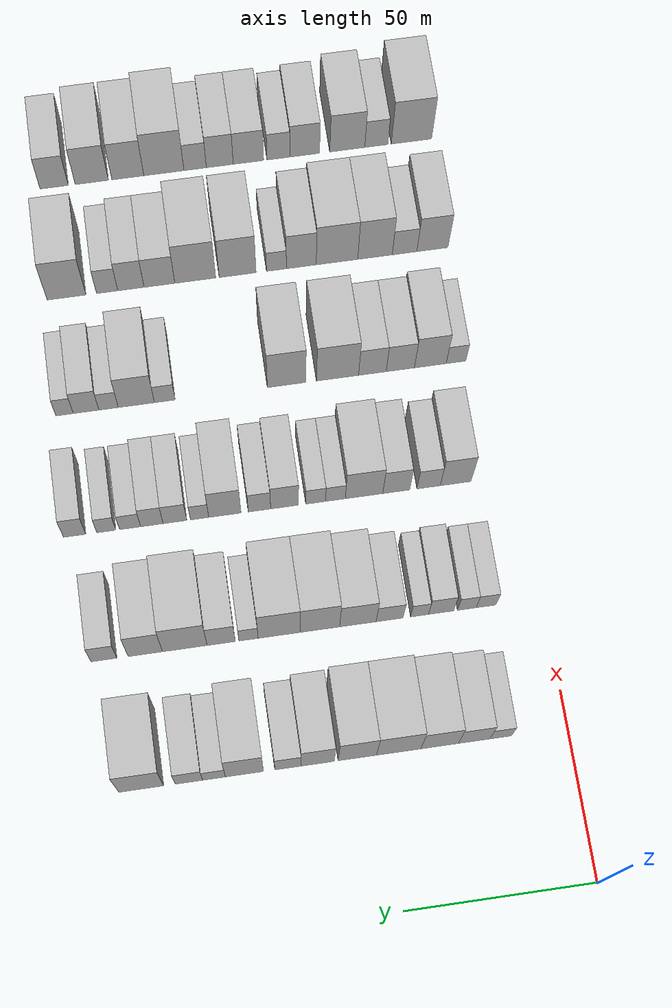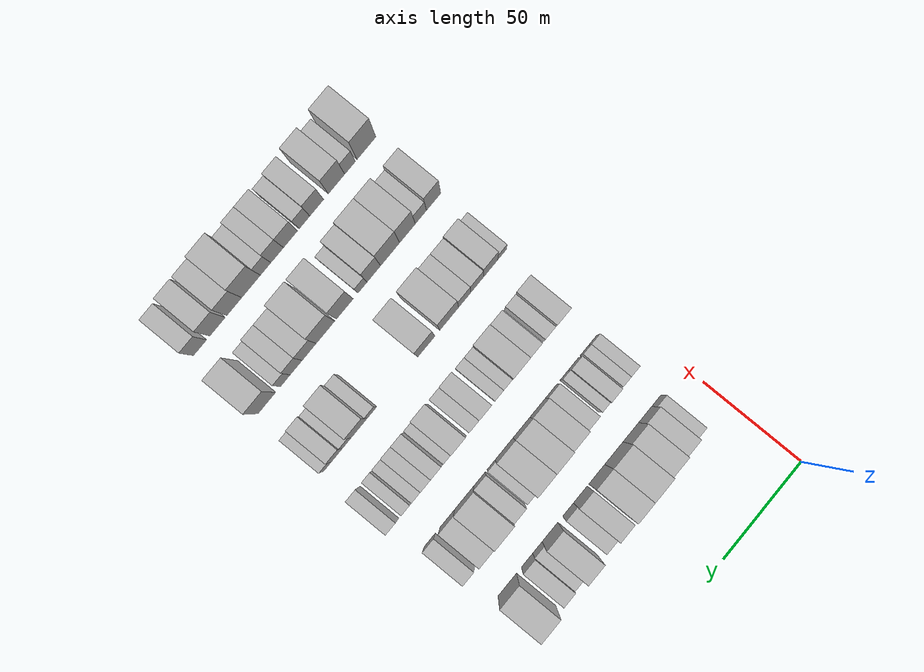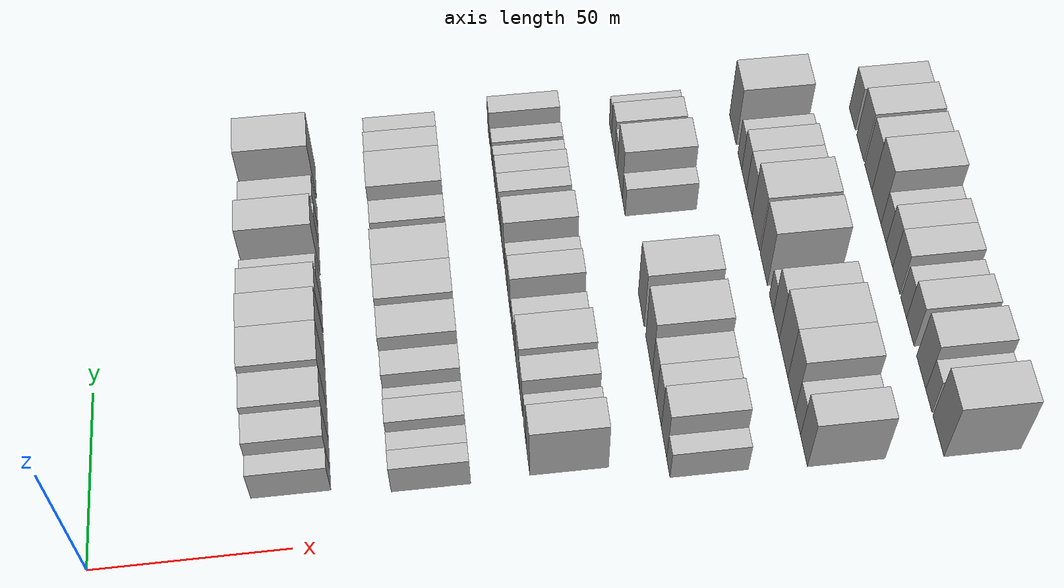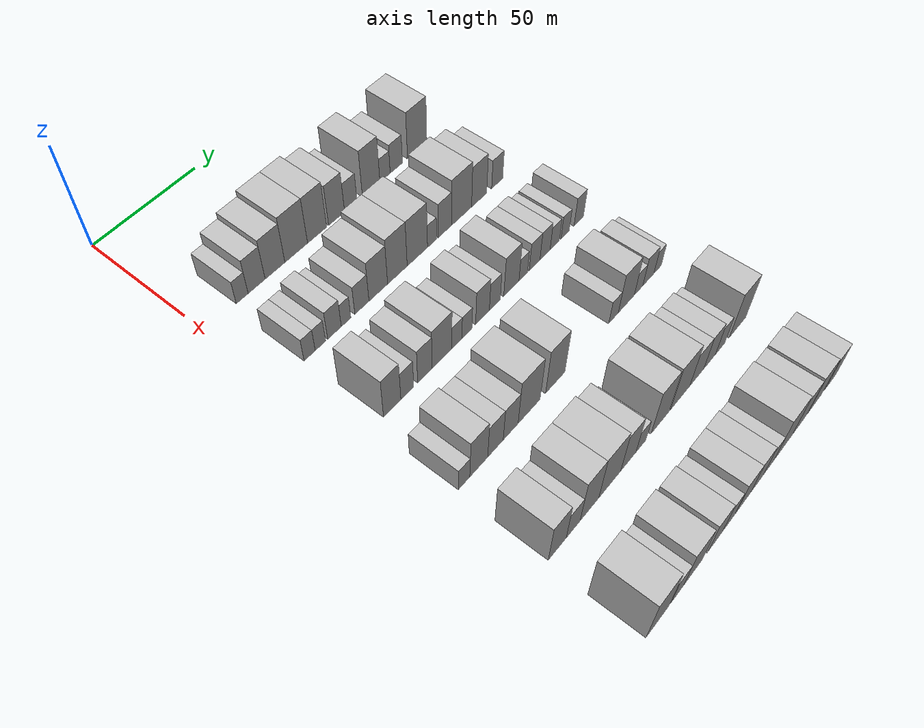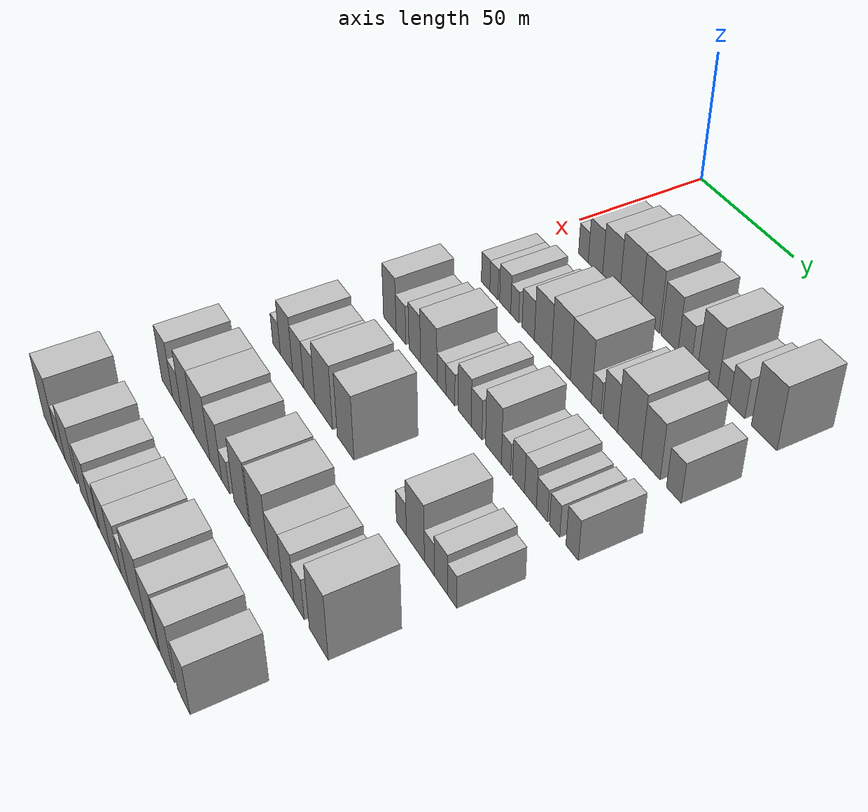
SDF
<sdf version="1.6">
 <world name="default">
  <model name="building_64">
   <static>1</static>
   <pose>50.0000 17.7749 0 0.000000 0.000000 0.000000</pose>
   <link name="link">
    <pose>0 0 6.00 0 0 0</pose>
    <collision name="collision"><geometry><box><size>20.0000 5.7435 12.0000</size></box></geometry></collision>
    <visual name="visual">
     <cast_shadows>0</cast_shadows>
     <geometry><box><size>20.0000 5.7435 12.0000</size></box></geometry>
     <material>
      <script>
       <uri>model://HANNAS_wall/materials/scripts</uri>
       <uri>model://HANNAS_wall/materials/textures</uri>
       <name>vrc/HANNAS_wall</name>
      </script>
     </material>
    </visual>
   </link>
  </model>
  <model name="building_65">
   <static>1</static>
   <pose>50.0000 24.8123 0 0.000000 0.000000 0.000000</pose>
   <link name="link">
    <pose>0 0 9.00 0 0 0</pose>
    <collision name="collision"><geometry><box><size>20.0000 8.3312 18.0000</size></box></geometry></collision>
    <visual name="visual">
     <cast_shadows>0</cast_shadows>
     <geometry><box><size>20.0000 8.3312 18.0000</size></box></geometry>
     <material>
      <script>
       <uri>model://HANNAS_wall/materials/scripts</uri>
       <uri>model://HANNAS_wall/materials/textures</uri>
       <name>vrc/HANNAS_wall</name>
      </script>
     </material>
    </visual>
   </link>
  </model>
  <model name="building_66">
   <static>1</static>
   <pose>50.0000 33.9405 0 0.000000 0.000000 0.000000</pose>
   <link name="link">
    <pose>0 0 10.50 0 0 0</pose>
    <collision name="collision"><geometry><box><size>20.0000 9.9251 21.0000</size></box></geometry></collision>
    <visual name="visual">
     <cast_shadows>0</cast_shadows>
     <geometry><box><size>20.0000 9.9251 21.0000</size></box></geometry>
     <material>
      <script>
       <uri>model://HANNAS_wall/materials/scripts</uri>
       <uri>model://HANNAS_wall/materials/textures</uri>
       <name>vrc/HANNAS_wall</name>
      </script>
     </material>
    </visual>
   </link>
  </model>
  <model name="building_67">
   <static>1</static>
   <pose>50.0000 44.7420 0 0.000000 0.000000 0.000000</pose>
   <link name="link">
    <pose>0 0 12.00 0 0 0</pose>
    <collision name="collision"><geometry><box><size>20.0000 11.6780 24.0000</size></box></geometry></collision>
    <visual name="visual">
     <cast_shadows>0</cast_shadows>
     <geometry><box><size>20.0000 11.6780 24.0000</size></box></geometry>
     <material>
      <script>
       <uri>model://HANNAS_wall/materials/scripts</uri>
       <uri>model://HANNAS_wall/materials/textures</uri>
       <name>vrc/HANNAS_wall</name>
      </script>
     </material>
    </visual>
   </link>
  </model>
  <model name="building_68">
   <static>1</static>
   <pose>50.0000 55.6194 0 0.000000 0.000000 0.000000</pose>
   <link name="link">
    <pose>0 0 12.00 0 0 0</pose>
    <collision name="collision"><geometry><box><size>20.0000 10.0769 24.0000</size></box></geometry></collision>
    <visual name="visual">
     <cast_shadows>0</cast_shadows>
     <geometry><box><size>20.0000 10.0769 24.0000</size></box></geometry>
     <material>
      <script>
       <uri>model://HANNAS_wall/materials/scripts</uri>
       <uri>model://HANNAS_wall/materials/textures</uri>
       <name>vrc/HANNAS_wall</name>
      </script>
     </material>
    </visual>
   </link>
  </model>
  <model name="building_69">
   <static>1</static>
   <pose>50.0000 66.0044 0 0.000000 0.000000 0.000000</pose>
   <link name="link">
    <pose>0 0 10.50 0 0 0</pose>
    <collision name="collision"><geometry><box><size>20.0000 8.6930 21.0000</size></box></geometry></collision>
    <visual name="visual">
     <cast_shadows>0</cast_shadows>
     <geometry><box><size>20.0000 8.6930 21.0000</size></box></geometry>
     <material>
      <script>
       <uri>model://HANNAS_wall/materials/scripts</uri>
       <uri>model://HANNAS_wall/materials/textures</uri>
       <name>vrc/HANNAS_wall</name>
      </script>
     </material>
    </visual>
   </link>
  </model>
  <model name="building_70">
   <static>1</static>
   <pose>50.0000 73.7769 0 0.000000 0.000000 0.000000</pose>
   <link name="link">
    <pose>0 0 7.50 0 0 0</pose>
    <collision name="collision"><geometry><box><size>20.0000 6.8519 15.0000</size></box></geometry></collision>
    <visual name="visual">
     <cast_shadows>0</cast_shadows>
     <geometry><box><size>20.0000 6.8519 15.0000</size></box></geometry>
     <material>
      <script>
       <uri>model://HANNAS_wall/materials/scripts</uri>
       <uri>model://HANNAS_wall/materials/textures</uri>
       <name>vrc/HANNAS_wall</name>
      </script>
     </material>
    </visual>
   </link>
  </model>
  <model name="building_71">
   <static>1</static>
   <pose>50.0000 85.1563 0 0.000000 0.000000 0.000000</pose>
   <link name="link">
    <pose>0 0 12.00 0 0 0</pose>
    <collision name="collision"><geometry><box><size>20.0000 9.9069 24.0000</size></box></geometry></collision>
    <visual name="visual">
     <cast_shadows>0</cast_shadows>
     <geometry><box><size>20.0000 9.9069 24.0000</size></box></geometry>
     <material>
      <script>
       <uri>model://HANNAS_wall/materials/scripts</uri>
       <uri>model://HANNAS_wall/materials/textures</uri>
       <name>vrc/HANNAS_wall</name>
      </script>
     </material>
    </visual>
   </link>
  </model>
  <model name="building_72">
   <static>1</static>
   <pose>50.0000 93.0686 0 0.000000 0.000000 0.000000</pose>
   <link name="link">
    <pose>0 0 6.00 0 0 0</pose>
    <collision name="collision"><geometry><box><size>20.0000 5.9179 12.0000</size></box></geometry></collision>
    <visual name="visual">
     <cast_shadows>0</cast_shadows>
     <geometry><box><size>20.0000 5.9179 12.0000</size></box></geometry>
     <material>
      <script>
       <uri>model://HANNAS_wall/materials/scripts</uri>
       <uri>model://HANNAS_wall/materials/textures</uri>
       <name>vrc/HANNAS_wall</name>
      </script>
     </material>
    </visual>
   </link>
  </model>
  <model name="building_73">
   <static>1</static>
   <pose>50.0000 99.6055 0 0.000000 0.000000 0.000000</pose>
   <link name="link">
    <pose>0 0 7.50 0 0 0</pose>
    <collision name="collision"><geometry><box><size>20.0000 7.1558 15.0000</size></box></geometry></collision>
    <visual name="visual">
     <cast_shadows>0</cast_shadows>
     <geometry><box><size>20.0000 7.1558 15.0000</size></box></geometry>
     <material>
      <script>
       <uri>model://HANNAS_wall/materials/scripts</uri>
       <uri>model://HANNAS_wall/materials/textures</uri>
       <name>vrc/HANNAS_wall</name>
      </script>
     </material>
    </visual>
   </link>
  </model>
  <model name="building_74">
   <static>1</static>
   <pose>50.0000 112.0020 0 0.000000 0.000000 0.000000</pose>
   <link name="link">
    <pose>0 0 12.00 0 0 0</pose>
    <collision name="collision"><geometry><box><size>20.0000 11.6372 24.0000</size></box></geometry></collision>
    <visual name="visual">
     <cast_shadows>0</cast_shadows>
     <geometry><box><size>20.0000 11.6372 24.0000</size></box></geometry>
     <material>
      <script>
       <uri>model://HANNAS_wall/materials/scripts</uri>
       <uri>model://HANNAS_wall/materials/textures</uri>
       <name>vrc/HANNAS_wall</name>
      </script>
     </material>
    </visual>
   </link>
  </model>
  <model name="building_183">
   <static>1</static>
   <pose>85.0000 15.4056 0 0.000000 0.000000 0.000000</pose>
   <link name="link">
    <pose>0 0 6.00 0 0 0</pose>
    <collision name="collision"><geometry><box><size>20.0000 5.3772 12.0000</size></box></geometry></collision>
    <visual name="visual">
     <cast_shadows>0</cast_shadows>
     <geometry><box><size>20.0000 5.3772 12.0000</size></box></geometry>
     <material>
      <script>
       <uri>model://HANNAS_wall/materials/scripts</uri>
       <uri>model://HANNAS_wall/materials/textures</uri>
       <name>vrc/HANNAS_wall</name>
      </script>
     </material>
    </visual>
   </link>
  </model>
  <model name="building_184">
   <static>1</static>
   <pose>85.0000 20.6402 0 0.000000 0.000000 0.000000</pose>
   <link name="link">
    <pose>0 0 6.00 0 0 0</pose>
    <collision name="collision"><geometry><box><size>20.0000 5.0920 12.0000</size></box></geometry></collision>
    <visual name="visual">
     <cast_shadows>0</cast_shadows>
     <geometry><box><size>20.0000 5.0920 12.0000</size></box></geometry>
     <material>
      <script>
       <uri>model://HANNAS_wall/materials/scripts</uri>
       <uri>model://HANNAS_wall/materials/textures</uri>
       <name>vrc/HANNAS_wall</name>
      </script>
     </material>
    </visual>
   </link>
  </model>
  <model name="building_185">
   <static>1</static>
   <pose>85.0000 27.6008 0 0.000000 0.000000 0.000000</pose>
   <link name="link">
    <pose>0 0 7.50 0 0 0</pose>
    <collision name="collision"><geometry><box><size>20.0000 6.8293 15.0000</size></box></geometry></collision>
    <visual name="visual">
     <cast_shadows>0</cast_shadows>
     <geometry><box><size>20.0000 6.8293 15.0000</size></box></geometry>
     <material>
      <script>
       <uri>model://HANNAS_wall/materials/scripts</uri>
       <uri>model://HANNAS_wall/materials/textures</uri>
       <name>vrc/HANNAS_wall</name>
      </script>
     </material>
    </visual>
   </link>
  </model>
  <model name="building_186">
   <static>1</static>
   <pose>85.0000 33.4382 0 0.000000 0.000000 0.000000</pose>
   <link name="link">
    <pose>0 0 6.00 0 0 0</pose>
    <collision name="collision"><geometry><box><size>20.0000 4.8455 12.0000</size></box></geometry></collision>
    <visual name="visual">
     <cast_shadows>0</cast_shadows>
     <geometry><box><size>20.0000 4.8455 12.0000</size></box></geometry>
     <material>
      <script>
       <uri>model://HANNAS_wall/materials/scripts</uri>
       <uri>model://HANNAS_wall/materials/textures</uri>
       <name>vrc/HANNAS_wall</name>
      </script>
     </material>
    </visual>
   </link>
  </model>
  <model name="building_187">
   <static>1</static>
   <pose>85.0000 41.5007 0 0.000000 0.000000 0.000000</pose>
   <link name="link">
    <pose>0 0 7.50 0 0 0</pose>
    <collision name="collision"><geometry><box><size>20.0000 7.2795 15.0000</size></box></geometry></collision>
    <visual name="visual">
     <cast_shadows>0</cast_shadows>
     <geometry><box><size>20.0000 7.2795 15.0000</size></box></geometry>
     <material>
      <script>
       <uri>model://HANNAS_wall/materials/scripts</uri>
       <uri>model://HANNAS_wall/materials/textures</uri>
       <name>vrc/HANNAS_wall</name>
      </script>
     </material>
    </visual>
   </link>
  </model>
  <model name="building_188">
   <static>1</static>
   <pose>85.0000 50.0551 0 0.000000 0.000000 0.000000</pose>
   <link name="link">
    <pose>0 0 10.50 0 0 0</pose>
    <collision name="collision"><geometry><box><size>20.0000 9.8293 21.0000</size></box></geometry></collision>
    <visual name="visual">
     <cast_shadows>0</cast_shadows>
     <geometry><box><size>20.0000 9.8293 21.0000</size></box></geometry>
     <material>
      <script>
       <uri>model://HANNAS_wall/materials/scripts</uri>
       <uri>model://HANNAS_wall/materials/textures</uri>
       <name>vrc/HANNAS_wall</name>
      </script>
     </material>
    </visual>
   </link>
  </model>
  <model name="building_189">
   <static>1</static>
   <pose>85.0000 60.2515 0 0.000000 0.000000 0.000000</pose>
   <link name="link">
    <pose>0 0 12.00 0 0 0</pose>
    <collision name="collision"><geometry><box><size>20.0000 10.5635 24.0000</size></box></geometry></collision>
    <visual name="visual">
     <cast_shadows>0</cast_shadows>
     <geometry><box><size>20.0000 10.5635 24.0000</size></box></geometry>
     <material>
      <script>
       <uri>model://HANNAS_wall/materials/scripts</uri>
       <uri>model://HANNAS_wall/materials/textures</uri>
       <name>vrc/HANNAS_wall</name>
      </script>
     </material>
    </visual>
   </link>
  </model>
  <model name="building_190">
   <static>1</static>
   <pose>85.0000 71.1760 0 0.000000 0.000000 0.000000</pose>
   <link name="link">
    <pose>0 0 12.00 0 0 0</pose>
    <collision name="collision"><geometry><box><size>20.0000 11.2855 24.0000</size></box></geometry></collision>
    <visual name="visual">
     <cast_shadows>0</cast_shadows>
     <geometry><box><size>20.0000 11.2855 24.0000</size></box></geometry>
     <material>
      <script>
       <uri>model://HANNAS_wall/materials/scripts</uri>
       <uri>model://HANNAS_wall/materials/textures</uri>
       <name>vrc/HANNAS_wall</name>
      </script>
     </material>
    </visual>
   </link>
  </model>
  <model name="building_191">
   <static>1</static>
   <pose>85.0000 79.3750 0 0.000000 0.000000 0.000000</pose>
   <link name="link">
    <pose>0 0 6.00 0 0 0</pose>
    <collision name="collision"><geometry><box><size>20.0000 5.1126 12.0000</size></box></geometry></collision>
    <visual name="visual">
     <cast_shadows>0</cast_shadows>
     <geometry><box><size>20.0000 5.1126 12.0000</size></box></geometry>
     <material>
      <script>
       <uri>model://HANNAS_wall/materials/scripts</uri>
       <uri>model://HANNAS_wall/materials/textures</uri>
       <name>vrc/HANNAS_wall</name>
      </script>
     </material>
    </visual>
   </link>
  </model>
  <model name="building_192">
   <static>1</static>
   <pose>85.0000 86.6993 0 0.000000 0.000000 0.000000</pose>
   <link name="link">
    <pose>0 0 9.00 0 0 0</pose>
    <collision name="collision"><geometry><box><size>20.0000 7.5360 18.0000</size></box></geometry></collision>
    <visual name="visual">
     <cast_shadows>0</cast_shadows>
     <geometry><box><size>20.0000 7.5360 18.0000</size></box></geometry>
     <material>
      <script>
       <uri>model://HANNAS_wall/materials/scripts</uri>
       <uri>model://HANNAS_wall/materials/textures</uri>
       <name>vrc/HANNAS_wall</name>
      </script>
     </material>
    </visual>
   </link>
  </model>
  <model name="building_193">
   <static>1</static>
   <pose>85.0000 96.4173 0 0.000000 0.000000 0.000000</pose>
   <link name="link">
    <pose>0 0 12.00 0 0 0</pose>
    <collision name="collision"><geometry><box><size>20.0000 11.9000 24.0000</size></box></geometry></collision>
    <visual name="visual">
     <cast_shadows>0</cast_shadows>
     <geometry><box><size>20.0000 11.9000 24.0000</size></box></geometry>
     <material>
      <script>
       <uri>model://HANNAS_wall/materials/scripts</uri>
       <uri>model://HANNAS_wall/materials/textures</uri>
       <name>vrc/HANNAS_wall</name>
      </script>
     </material>
    </visual>
   </link>
  </model>
  <model name="building_194">
   <static>1</static>
   <pose>85.0000 106.9248 0 0.000000 0.000000 0.000000</pose>
   <link name="link">
    <pose>0 0 10.50 0 0 0</pose>
    <collision name="collision"><geometry><box><size>20.0000 9.1150 21.0000</size></box></geometry></collision>
    <visual name="visual">
     <cast_shadows>0</cast_shadows>
     <geometry><box><size>20.0000 9.1150 21.0000</size></box></geometry>
     <material>
      <script>
       <uri>model://HANNAS_wall/materials/scripts</uri>
       <uri>model://HANNAS_wall/materials/textures</uri>
       <name>vrc/HANNAS_wall</name>
      </script>
     </material>
    </visual>
   </link>
  </model>
  <model name="building_195">
   <static>1</static>
   <pose>85.0000 117.9115 0 0.000000 0.000000 0.000000</pose>
   <link name="link">
    <pose>0 0 7.50 0 0 0</pose>
    <collision name="collision"><geometry><box><size>20.0000 6.8585 15.0000</size></box></geometry></collision>
    <visual name="visual">
     <cast_shadows>0</cast_shadows>
     <geometry><box><size>20.0000 6.8585 15.0000</size></box></geometry>
     <material>
      <script>
       <uri>model://HANNAS_wall/materials/scripts</uri>
       <uri>model://HANNAS_wall/materials/textures</uri>
       <name>vrc/HANNAS_wall</name>
      </script>
     </material>
    </visual>
   </link>
  </model>
  <model name="building_311">
   <static>1</static>
   <pose>120.0000 17.6443 0 0.000000 0.000000 0.000000</pose>
   <link name="link">
    <pose>0 0 10.50 0 0 0</pose>
    <collision name="collision"><geometry><box><size>20.0000 8.5324 21.0000</size></box></geometry></collision>
    <visual name="visual">
     <cast_shadows>0</cast_shadows>
     <geometry><box><size>20.0000 8.5324 21.0000</size></box></geometry>
     <material>
      <script>
       <uri>model://HANNAS_wall/materials/scripts</uri>
       <uri>model://HANNAS_wall/materials/textures</uri>
       <name>vrc/HANNAS_wall</name>
      </script>
     </material>
    </visual>
   </link>
  </model>
  <model name="building_312">
   <static>1</static>
   <pose>120.0000 25.1305 0 0.000000 0.000000 0.000000</pose>
   <link name="link">
    <pose>0 0 7.50 0 0 0</pose>
    <collision name="collision"><geometry><box><size>20.0000 6.4400 15.0000</size></box></geometry></collision>
    <visual name="visual">
     <cast_shadows>0</cast_shadows>
     <geometry><box><size>20.0000 6.4400 15.0000</size></box></geometry>
     <material>
      <script>
       <uri>model://HANNAS_wall/materials/scripts</uri>
       <uri>model://HANNAS_wall/materials/textures</uri>
       <name>vrc/HANNAS_wall</name>
      </script>
     </material>
    </visual>
   </link>
  </model>
  <model name="building_313">
   <static>1</static>
   <pose>120.0000 34.0633 0 0.000000 0.000000 0.000000</pose>
   <link name="link">
    <pose>0 0 9.00 0 0 0</pose>
    <collision name="collision"><geometry><box><size>20.0000 7.4256 18.0000</size></box></geometry></collision>
    <visual name="visual">
     <cast_shadows>0</cast_shadows>
     <geometry><box><size>20.0000 7.4256 18.0000</size></box></geometry>
     <material>
      <script>
       <uri>model://HANNAS_wall/materials/scripts</uri>
       <uri>model://HANNAS_wall/materials/textures</uri>
       <name>vrc/HANNAS_wall</name>
      </script>
     </material>
    </visual>
   </link>
  </model>
  <model name="building_314">
   <static>1</static>
   <pose>120.0000 42.9506 0 0.000000 0.000000 0.000000</pose>
   <link name="link">
    <pose>0 0 10.50 0 0 0</pose>
    <collision name="collision"><geometry><box><size>20.0000 10.3489 21.0000</size></box></geometry></collision>
    <visual name="visual">
     <cast_shadows>0</cast_shadows>
     <geometry><box><size>20.0000 10.3489 21.0000</size></box></geometry>
     <material>
      <script>
       <uri>model://HANNAS_wall/materials/scripts</uri>
       <uri>model://HANNAS_wall/materials/textures</uri>
       <name>vrc/HANNAS_wall</name>
      </script>
     </material>
    </visual>
   </link>
  </model>
  <model name="building_315">
   <static>1</static>
   <pose>120.0000 50.8387 0 0.000000 0.000000 0.000000</pose>
   <link name="link">
    <pose>0 0 6.00 0 0 0</pose>
    <collision name="collision"><geometry><box><size>20.0000 5.4272 12.0000</size></box></geometry></collision>
    <visual name="visual">
     <cast_shadows>0</cast_shadows>
     <geometry><box><size>20.0000 5.4272 12.0000</size></box></geometry>
     <material>
      <script>
       <uri>model://HANNAS_wall/materials/scripts</uri>
       <uri>model://HANNAS_wall/materials/textures</uri>
       <name>vrc/HANNAS_wall</name>
      </script>
     </material>
    </visual>
   </link>
  </model>
  <model name="building_316">
   <static>1</static>
   <pose>120.0000 56.2664 0 0.000000 0.000000 0.000000</pose>
   <link name="link">
    <pose>0 0 6.00 0 0 0</pose>
    <collision name="collision"><geometry><box><size>20.0000 5.4281 12.0000</size></box></geometry></collision>
    <visual name="visual">
     <cast_shadows>0</cast_shadows>
     <geometry><box><size>20.0000 5.4281 12.0000</size></box></geometry>
     <material>
      <script>
       <uri>model://HANNAS_wall/materials/scripts</uri>
       <uri>model://HANNAS_wall/materials/textures</uri>
       <name>vrc/HANNAS_wall</name>
      </script>
     </material>
    </visual>
   </link>
  </model>
  <model name="building_317">
   <static>1</static>
   <pose>120.0000 64.7963 0 0.000000 0.000000 0.000000</pose>
   <link name="link">
    <pose>0 0 9.00 0 0 0</pose>
    <collision name="collision"><geometry><box><size>20.0000 7.6318 18.0000</size></box></geometry></collision>
    <visual name="visual">
     <cast_shadows>0</cast_shadows>
     <geometry><box><size>20.0000 7.6318 18.0000</size></box></geometry>
     <material>
      <script>
       <uri>model://HANNAS_wall/materials/scripts</uri>
       <uri>model://HANNAS_wall/materials/textures</uri>
       <name>vrc/HANNAS_wall</name>
      </script>
     </material>
    </visual>
   </link>
  </model>
  <model name="building_318">
   <static>1</static>
   <pose>120.0000 71.6758 0 0.000000 0.000000 0.000000</pose>
   <link name="link">
    <pose>0 0 7.50 0 0 0</pose>
    <collision name="collision"><geometry><box><size>20.0000 6.1271 15.0000</size></box></geometry></collision>
    <visual name="visual">
     <cast_shadows>0</cast_shadows>
     <geometry><box><size>20.0000 6.1271 15.0000</size></box></geometry>
     <material>
      <script>
       <uri>model://HANNAS_wall/materials/scripts</uri>
       <uri>model://HANNAS_wall/materials/textures</uri>
       <name>vrc/HANNAS_wall</name>
      </script>
     </material>
    </visual>
   </link>
  </model>
  <model name="building_319">
   <static>1</static>
   <pose>120.0000 81.1484 0 0.000000 0.000000 0.000000</pose>
   <link name="link">
    <pose>0 0 10.50 0 0 0</pose>
    <collision name="collision"><geometry><box><size>20.0000 8.8182 21.0000</size></box></geometry></collision>
    <visual name="visual">
     <cast_shadows>0</cast_shadows>
     <geometry><box><size>20.0000 8.8182 21.0000</size></box></geometry>
     <material>
      <script>
       <uri>model://HANNAS_wall/materials/scripts</uri>
       <uri>model://HANNAS_wall/materials/textures</uri>
       <name>vrc/HANNAS_wall</name>
      </script>
     </material>
    </visual>
   </link>
  </model>
  <model name="building_320">
   <static>1</static>
   <pose>120.0000 88.0601 0 0.000000 0.000000 0.000000</pose>
   <link name="link">
    <pose>0 0 6.00 0 0 0</pose>
    <collision name="collision"><geometry><box><size>20.0000 5.0052 12.0000</size></box></geometry></collision>
    <visual name="visual">
     <cast_shadows>0</cast_shadows>
     <geometry><box><size>20.0000 5.0052 12.0000</size></box></geometry>
     <material>
      <script>
       <uri>model://HANNAS_wall/materials/scripts</uri>
       <uri>model://HANNAS_wall/materials/textures</uri>
       <name>vrc/HANNAS_wall</name>
      </script>
     </material>
    </visual>
   </link>
  </model>
  <model name="building_321">
   <static>1</static>
   <pose>120.0000 94.7893 0 0.000000 0.000000 0.000000</pose>
   <link name="link">
    <pose>0 0 7.50 0 0 0</pose>
    <collision name="collision"><geometry><box><size>20.0000 6.4530 15.0000</size></box></geometry></collision>
    <visual name="visual">
     <cast_shadows>0</cast_shadows>
     <geometry><box><size>20.0000 6.4530 15.0000</size></box></geometry>
     <material>
      <script>
       <uri>model://HANNAS_wall/materials/scripts</uri>
       <uri>model://HANNAS_wall/materials/textures</uri>
       <name>vrc/HANNAS_wall</name>
      </script>
     </material>
    </visual>
   </link>
  </model>
  <model name="building_322">
   <static>1</static>
   <pose>120.0000 101.0826 0 0.000000 0.000000 0.000000</pose>
   <link name="link">
    <pose>0 0 7.50 0 0 0</pose>
    <collision name="collision"><geometry><box><size>20.0000 6.1337 15.0000</size></box></geometry></collision>
    <visual name="visual">
     <cast_shadows>0</cast_shadows>
     <geometry><box><size>20.0000 6.1337 15.0000</size></box></geometry>
     <material>
      <script>
       <uri>model://HANNAS_wall/materials/scripts</uri>
       <uri>model://HANNAS_wall/materials/textures</uri>
       <name>vrc/HANNAS_wall</name>
      </script>
     </material>
    </visual>
   </link>
  </model>
  <model name="building_323">
   <static>1</static>
   <pose>120.0000 107.0222 0 0.000000 0.000000 0.000000</pose>
   <link name="link">
    <pose>0 0 6.00 0 0 0</pose>
    <collision name="collision"><geometry><box><size>20.0000 5.7455 12.0000</size></box></geometry></collision>
    <visual name="visual">
     <cast_shadows>0</cast_shadows>
     <geometry><box><size>20.0000 5.7455 12.0000</size></box></geometry>
     <material>
      <script>
       <uri>model://HANNAS_wall/materials/scripts</uri>
       <uri>model://HANNAS_wall/materials/textures</uri>
       <name>vrc/HANNAS_wall</name>
      </script>
     </material>
    </visual>
   </link>
  </model>
  <model name="building_324">
   <static>1</static>
   <pose>120.0000 113.4800 0 0.000000 0.000000 0.000000</pose>
   <link name="link">
    <pose>0 0 6.00 0 0 0</pose>
    <collision name="collision"><geometry><box><size>20.0000 5.1702 12.0000</size></box></geometry></collision>
    <visual name="visual">
     <cast_shadows>0</cast_shadows>
     <geometry><box><size>20.0000 5.1702 12.0000</size></box></geometry>
     <material>
      <script>
       <uri>model://HANNAS_wall/materials/scripts</uri>
       <uri>model://HANNAS_wall/materials/textures</uri>
       <name>vrc/HANNAS_wall</name>
      </script>
     </material>
    </visual>
   </link>
  </model>
  <model name="building_325">
   <static>1</static>
   <pose>120.0000 122.0868 0 0.000000 0.000000 0.000000</pose>
   <link name="link">
    <pose>0 0 7.50 0 0 0</pose>
    <collision name="collision"><geometry><box><size>20.0000 6.0433 15.0000</size></box></geometry></collision>
    <visual name="visual">
     <cast_shadows>0</cast_shadows>
     <geometry><box><size>20.0000 6.0433 15.0000</size></box></geometry>
     <material>
      <script>
       <uri>model://HANNAS_wall/materials/scripts</uri>
       <uri>model://HANNAS_wall/materials/textures</uri>
       <name>vrc/HANNAS_wall</name>
      </script>
     </material>
    </visual>
   </link>
  </model>
  <model name="building_434">
   <static>1</static>
   <pose>155.0000 11.4994 0 0.000000 0.000000 0.000000</pose>
   <link name="link">
    <pose>0 0 6.00 0 0 0</pose>
    <collision name="collision"><geometry><box><size>20.0000 5.5706 12.0000</size></box></geometry></collision>
    <visual name="visual">
     <cast_shadows>0</cast_shadows>
     <geometry><box><size>20.0000 5.5706 12.0000</size></box></geometry>
     <material>
      <script>
       <uri>model://HANNAS_wall/materials/scripts</uri>
       <uri>model://HANNAS_wall/materials/textures</uri>
       <name>vrc/HANNAS_wall</name>
      </script>
     </material>
    </visual>
   </link>
  </model>
  <model name="building_435">
   <static>1</static>
   <pose>155.0000 18.7769 0 0.000000 0.000000 0.000000</pose>
   <link name="link">
    <pose>0 0 10.50 0 0 0</pose>
    <collision name="collision"><geometry><box><size>20.0000 8.9843 21.0000</size></box></geometry></collision>
    <visual name="visual">
     <cast_shadows>0</cast_shadows>
     <geometry><box><size>20.0000 8.9843 21.0000</size></box></geometry>
     <material>
      <script>
       <uri>model://HANNAS_wall/materials/scripts</uri>
       <uri>model://HANNAS_wall/materials/textures</uri>
       <name>vrc/HANNAS_wall</name>
      </script>
     </material>
    </visual>
   </link>
  </model>
  <model name="building_436">
   <static>1</static>
   <pose>155.0000 27.2504 0 0.000000 0.000000 0.000000</pose>
   <link name="link">
    <pose>0 0 9.00 0 0 0</pose>
    <collision name="collision"><geometry><box><size>20.0000 7.9627 18.0000</size></box></geometry></collision>
    <visual name="visual">
     <cast_shadows>0</cast_shadows>
     <geometry><box><size>20.0000 7.9627 18.0000</size></box></geometry>
     <material>
      <script>
       <uri>model://HANNAS_wall/materials/scripts</uri>
       <uri>model://HANNAS_wall/materials/textures</uri>
       <name>vrc/HANNAS_wall</name>
      </script>
     </material>
    </visual>
   </link>
  </model>
  <model name="building_437">
   <static>1</static>
   <pose>155.0000 35.1406 0 0.000000 0.000000 0.000000</pose>
   <link name="link">
    <pose>0 0 9.00 0 0 0</pose>
    <collision name="collision"><geometry><box><size>20.0000 7.8176 18.0000</size></box></geometry></collision>
    <visual name="visual">
     <cast_shadows>0</cast_shadows>
     <geometry><box><size>20.0000 7.8176 18.0000</size></box></geometry>
     <material>
      <script>
       <uri>model://HANNAS_wall/materials/scripts</uri>
       <uri>model://HANNAS_wall/materials/textures</uri>
       <name>vrc/HANNAS_wall</name>
      </script>
     </material>
    </visual>
   </link>
  </model>
  <model name="building_438">
   <static>1</static>
   <pose>155.0000 44.9843 0 0.000000 0.000000 0.000000</pose>
   <link name="link">
    <pose>0 0 12.00 0 0 0</pose>
    <collision name="collision"><geometry><box><size>20.0000 11.8699 24.0000</size></box></geometry></collision>
    <visual name="visual">
     <cast_shadows>0</cast_shadows>
     <geometry><box><size>20.0000 11.8699 24.0000</size></box></geometry>
     <material>
      <script>
       <uri>model://HANNAS_wall/materials/scripts</uri>
       <uri>model://HANNAS_wall/materials/textures</uri>
       <name>vrc/HANNAS_wall</name>
      </script>
     </material>
    </visual>
   </link>
  </model>
  <model name="building_439">
   <static>1</static>
   <pose>155.0000 59.3142 0 0.000000 0.000000 0.000000</pose>
   <link name="link">
    <pose>0 0 12.00 0 0 0</pose>
    <collision name="collision"><geometry><box><size>20.0000 10.7898 24.0000</size></box></geometry></collision>
    <visual name="visual">
     <cast_shadows>0</cast_shadows>
     <geometry><box><size>20.0000 10.7898 24.0000</size></box></geometry>
     <material>
      <script>
       <uri>model://HANNAS_wall/materials/scripts</uri>
       <uri>model://HANNAS_wall/materials/textures</uri>
       <name>vrc/HANNAS_wall</name>
      </script>
     </material>
    </visual>
   </link>
  </model>
  <model name="building_440">
   <static>1</static>
   <pose>155.0000 93.3971 0 0.000000 0.000000 0.000000</pose>
   <link name="link">
    <pose>0 0 6.00 0 0 0</pose>
    <collision name="collision"><geometry><box><size>20.0000 5.7920 12.0000</size></box></geometry></collision>
    <visual name="visual">
     <cast_shadows>0</cast_shadows>
     <geometry><box><size>20.0000 5.7920 12.0000</size></box></geometry>
     <material>
      <script>
       <uri>model://HANNAS_wall/materials/scripts</uri>
       <uri>model://HANNAS_wall/materials/textures</uri>
       <name>vrc/HANNAS_wall</name>
      </script>
     </material>
    </visual>
   </link>
  </model>
  <model name="building_441">
   <static>1</static>
   <pose>155.0000 101.3316 0 0.000000 0.000000 0.000000</pose>
   <link name="link">
    <pose>0 0 10.50 0 0 0</pose>
    <collision name="collision"><geometry><box><size>20.0000 10.0769 21.0000</size></box></geometry></collision>
    <visual name="visual">
     <cast_shadows>0</cast_shadows>
     <geometry><box><size>20.0000 10.0769 21.0000</size></box></geometry>
     <material>
      <script>
       <uri>model://HANNAS_wall/materials/scripts</uri>
       <uri>model://HANNAS_wall/materials/textures</uri>
       <name>vrc/HANNAS_wall</name>
      </script>
     </material>
    </visual>
   </link>
  </model>
  <model name="building_442">
   <static>1</static>
   <pose>155.0000 109.0671 0 0.000000 0.000000 0.000000</pose>
   <link name="link">
    <pose>0 0 6.00 0 0 0</pose>
    <collision name="collision"><geometry><box><size>20.0000 5.3942 12.0000</size></box></geometry></collision>
    <visual name="visual">
     <cast_shadows>0</cast_shadows>
     <geometry><box><size>20.0000 5.3942 12.0000</size></box></geometry>
     <material>
      <script>
       <uri>model://HANNAS_wall/materials/scripts</uri>
       <uri>model://HANNAS_wall/materials/textures</uri>
       <name>vrc/HANNAS_wall</name>
      </script>
     </material>
    </visual>
   </link>
  </model>
  <model name="building_443">
   <static>1</static>
   <pose>155.0000 115.3248 0 0.000000 0.000000 0.000000</pose>
   <link name="link">
    <pose>0 0 7.50 0 0 0</pose>
    <collision name="collision"><geometry><box><size>20.0000 7.1213 15.0000</size></box></geometry></collision>
    <visual name="visual">
     <cast_shadows>0</cast_shadows>
     <geometry><box><size>20.0000 7.1213 15.0000</size></box></geometry>
     <material>
      <script>
       <uri>model://HANNAS_wall/materials/scripts</uri>
       <uri>model://HANNAS_wall/materials/textures</uri>
       <name>vrc/HANNAS_wall</name>
      </script>
     </material>
    </visual>
   </link>
  </model>
  <model name="building_444">
   <static>1</static>
   <pose>155.0000 121.2990 0 0.000000 0.000000 0.000000</pose>
   <link name="link">
    <pose>0 0 6.00 0 0 0</pose>
    <collision name="collision"><geometry><box><size>20.0000 4.8271 12.0000</size></box></geometry></collision>
    <visual name="visual">
     <cast_shadows>0</cast_shadows>
     <geometry><box><size>20.0000 4.8271 12.0000</size></box></geometry>
     <material>
      <script>
       <uri>model://HANNAS_wall/materials/scripts</uri>
       <uri>model://HANNAS_wall/materials/textures</uri>
       <name>vrc/HANNAS_wall</name>
      </script>
     </material>
    </visual>
   </link>
  </model>
  <model name="building_561">
   <static>1</static>
   <pose>190.0000 12.3030 0 0.000000 0.000000 0.000000</pose>
   <link name="link">
    <pose>0 0 10.50 0 0 0</pose>
    <collision name="collision"><geometry><box><size>20.0000 9.0106 21.0000</size></box></geometry></collision>
    <visual name="visual">
     <cast_shadows>0</cast_shadows>
     <geometry><box><size>20.0000 9.0106 21.0000</size></box></geometry>
     <material>
      <script>
       <uri>model://HANNAS_wall/materials/scripts</uri>
       <uri>model://HANNAS_wall/materials/textures</uri>
       <name>vrc/HANNAS_wall</name>
      </script>
     </material>
    </visual>
   </link>
  </model>
  <model name="building_562">
   <static>1</static>
   <pose>190.0000 20.3663 0 0.000000 0.000000 0.000000</pose>
   <link name="link">
    <pose>0 0 7.50 0 0 0</pose>
    <collision name="collision"><geometry><box><size>20.0000 7.1159 15.0000</size></box></geometry></collision>
    <visual name="visual">
     <cast_shadows>0</cast_shadows>
     <geometry><box><size>20.0000 7.1159 15.0000</size></box></geometry>
     <material>
      <script>
       <uri>model://HANNAS_wall/materials/scripts</uri>
       <uri>model://HANNAS_wall/materials/textures</uri>
       <name>vrc/HANNAS_wall</name>
      </script>
     </material>
    </visual>
   </link>
  </model>
  <model name="building_563">
   <static>1</static>
   <pose>190.0000 28.9002 0 0.000000 0.000000 0.000000</pose>
   <link name="link">
    <pose>0 0 12.00 0 0 0</pose>
    <collision name="collision"><geometry><box><size>20.0000 9.9521 24.0000</size></box></geometry></collision>
    <visual name="visual">
     <cast_shadows>0</cast_shadows>
     <geometry><box><size>20.0000 9.9521 24.0000</size></box></geometry>
     <material>
      <script>
       <uri>model://HANNAS_wall/materials/scripts</uri>
       <uri>model://HANNAS_wall/materials/textures</uri>
       <name>vrc/HANNAS_wall</name>
      </script>
     </material>
    </visual>
   </link>
  </model>
  <model name="building_564">
   <static>1</static>
   <pose>190.0000 39.8634 0 0.000000 0.000000 0.000000</pose>
   <link name="link">
    <pose>0 0 12.00 0 0 0</pose>
    <collision name="collision"><geometry><box><size>20.0000 11.9742 24.0000</size></box></geometry></collision>
    <visual name="visual">
     <cast_shadows>0</cast_shadows>
     <geometry><box><size>20.0000 11.9742 24.0000</size></box></geometry>
     <material>
      <script>
       <uri>model://HANNAS_wall/materials/scripts</uri>
       <uri>model://HANNAS_wall/materials/textures</uri>
       <name>vrc/HANNAS_wall</name>
      </script>
     </material>
    </visual>
   </link>
  </model>
  <model name="building_565">
   <static>1</static>
   <pose>190.0000 50.1343 0 0.000000 0.000000 0.000000</pose>
   <link name="link">
    <pose>0 0 10.50 0 0 0</pose>
    <collision name="collision"><geometry><box><size>20.0000 8.5677 21.0000</size></box></geometry></collision>
    <visual name="visual">
     <cast_shadows>0</cast_shadows>
     <geometry><box><size>20.0000 8.5677 21.0000</size></box></geometry>
     <material>
      <script>
       <uri>model://HANNAS_wall/materials/scripts</uri>
       <uri>model://HANNAS_wall/materials/textures</uri>
       <name>vrc/HANNAS_wall</name>
      </script>
     </material>
    </visual>
   </link>
  </model>
  <model name="building_566">
   <static>1</static>
   <pose>190.0000 57.2695 0 0.000000 0.000000 0.000000</pose>
   <link name="link">
    <pose>0 0 6.00 0 0 0</pose>
    <collision name="collision"><geometry><box><size>20.0000 5.7027 12.0000</size></box></geometry></collision>
    <visual name="visual">
     <cast_shadows>0</cast_shadows>
     <geometry><box><size>20.0000 5.7027 12.0000</size></box></geometry>
     <material>
      <script>
       <uri>model://HANNAS_wall/materials/scripts</uri>
       <uri>model://HANNAS_wall/materials/textures</uri>
       <name>vrc/HANNAS_wall</name>
      </script>
     </material>
    </visual>
   </link>
  </model>
  <model name="building_567">
   <static>1</static>
   <pose>190.0000 68.4031 0 0.000000 0.000000 0.000000</pose>
   <link name="link">
    <pose>0 0 12.00 0 0 0</pose>
    <collision name="collision"><geometry><box><size>20.0000 10.5645 24.0000</size></box></geometry></collision>
    <visual name="visual">
     <cast_shadows>0</cast_shadows>
     <geometry><box><size>20.0000 10.5645 24.0000</size></box></geometry>
     <material>
      <script>
       <uri>model://HANNAS_wall/materials/scripts</uri>
       <uri>model://HANNAS_wall/materials/textures</uri>
       <name>vrc/HANNAS_wall</name>
      </script>
     </material>
    </visual>
   </link>
  </model>
  <model name="building_568">
   <static>1</static>
   <pose>190.0000 80.5265 0 0.000000 0.000000 0.000000</pose>
   <link name="link">
    <pose>0 0 12.00 0 0 0</pose>
    <collision name="collision"><geometry><box><size>20.0000 11.6821 24.0000</size></box></geometry></collision>
    <visual name="visual">
     <cast_shadows>0</cast_shadows>
     <geometry><box><size>20.0000 11.6821 24.0000</size></box></geometry>
     <material>
      <script>
       <uri>model://HANNAS_wall/materials/scripts</uri>
       <uri>model://HANNAS_wall/materials/textures</uri>
       <name>vrc/HANNAS_wall</name>
      </script>
     </material>
    </visual>
   </link>
  </model>
  <model name="building_569">
   <static>1</static>
   <pose>190.0000 90.7621 0 0.000000 0.000000 0.000000</pose>
   <link name="link">
    <pose>0 0 9.00 0 0 0</pose>
    <collision name="collision"><geometry><box><size>20.0000 8.7892 18.0000</size></box></geometry></collision>
    <visual name="visual">
     <cast_shadows>0</cast_shadows>
     <geometry><box><size>20.0000 8.7892 18.0000</size></box></geometry>
     <material>
      <script>
       <uri>model://HANNAS_wall/materials/scripts</uri>
       <uri>model://HANNAS_wall/materials/textures</uri>
       <name>vrc/HANNAS_wall</name>
      </script>
     </material>
    </visual>
   </link>
  </model>
  <model name="building_570">
   <static>1</static>
   <pose>190.0000 98.9062 0 0.000000 0.000000 0.000000</pose>
   <link name="link">
    <pose>0 0 9.00 0 0 0</pose>
    <collision name="collision"><geometry><box><size>20.0000 7.4989 18.0000</size></box></geometry></collision>
    <visual name="visual">
     <cast_shadows>0</cast_shadows>
     <geometry><box><size>20.0000 7.4989 18.0000</size></box></geometry>
     <material>
      <script>
       <uri>model://HANNAS_wall/materials/scripts</uri>
       <uri>model://HANNAS_wall/materials/textures</uri>
       <name>vrc/HANNAS_wall</name>
      </script>
     </material>
    </visual>
   </link>
  </model>
  <model name="building_571">
   <static>1</static>
   <pose>190.0000 105.6788 0 0.000000 0.000000 0.000000</pose>
   <link name="link">
    <pose>0 0 7.50 0 0 0</pose>
    <collision name="collision"><geometry><box><size>20.0000 6.0462 15.0000</size></box></geometry></collision>
    <visual name="visual">
     <cast_shadows>0</cast_shadows>
     <geometry><box><size>20.0000 6.0462 15.0000</size></box></geometry>
     <material>
      <script>
       <uri>model://HANNAS_wall/materials/scripts</uri>
       <uri>model://HANNAS_wall/materials/textures</uri>
       <name>vrc/HANNAS_wall</name>
      </script>
     </material>
    </visual>
   </link>
  </model>
  <model name="building_572">
   <static>1</static>
   <pose>190.0000 117.2217 0 0.000000 0.000000 0.000000</pose>
   <link name="link">
    <pose>0 0 12.00 0 0 0</pose>
    <collision name="collision"><geometry><box><size>20.0000 11.0397 24.0000</size></box></geometry></collision>
    <visual name="visual">
     <cast_shadows>0</cast_shadows>
     <geometry><box><size>20.0000 11.0397 24.0000</size></box></geometry>
     <material>
      <script>
       <uri>model://HANNAS_wall/materials/scripts</uri>
       <uri>model://HANNAS_wall/materials/textures</uri>
       <name>vrc/HANNAS_wall</name>
      </script>
     </material>
    </visual>
   </link>
  </model>
  <model name="building_680">
   <static>1</static>
   <pose>225.0000 12.6136 0 0.000000 0.000000 0.000000</pose>
   <link name="link">
    <pose>0 0 12.00 0 0 0</pose>
    <collision name="collision"><geometry><box><size>20.0000 11.9266 24.0000</size></box></geometry></collision>
    <visual name="visual">
     <cast_shadows>0</cast_shadows>
     <geometry><box><size>20.0000 11.9266 24.0000</size></box></geometry>
     <material>
      <script>
       <uri>model://HANNAS_wall/materials/scripts</uri>
       <uri>model://HANNAS_wall/materials/textures</uri>
       <name>vrc/HANNAS_wall</name>
      </script>
     </material>
    </visual>
   </link>
  </model>
  <model name="building_681">
   <static>1</static>
   <pose>225.0000 22.9797 0 0.000000 0.000000 0.000000</pose>
   <link name="link">
    <pose>0 0 7.50 0 0 0</pose>
    <collision name="collision"><geometry><box><size>20.0000 6.8057 15.0000</size></box></geometry></collision>
    <visual name="visual">
     <cast_shadows>0</cast_shadows>
     <geometry><box><size>20.0000 6.8057 15.0000</size></box></geometry>
     <material>
      <script>
       <uri>model://HANNAS_wall/materials/scripts</uri>
       <uri>model://HANNAS_wall/materials/textures</uri>
       <name>vrc/HANNAS_wall</name>
      </script>
     </material>
    </visual>
   </link>
  </model>
  <model name="building_682">
   <static>1</static>
   <pose>225.0000 31.5470 0 0.000000 0.000000 0.000000</pose>
   <link name="link">
    <pose>0 0 10.50 0 0 0</pose>
    <collision name="collision"><geometry><box><size>20.0000 10.3287 21.0000</size></box></geometry></collision>
    <visual name="visual">
     <cast_shadows>0</cast_shadows>
     <geometry><box><size>20.0000 10.3287 21.0000</size></box></geometry>
     <material>
      <script>
       <uri>model://HANNAS_wall/materials/scripts</uri>
       <uri>model://HANNAS_wall/materials/textures</uri>
       <name>vrc/HANNAS_wall</name>
      </script>
     </material>
    </visual>
   </link>
  </model>
  <model name="building_683">
   <static>1</static>
   <pose>225.0000 44.0824 0 0.000000 0.000000 0.000000</pose>
   <link name="link">
    <pose>0 0 9.00 0 0 0</pose>
    <collision name="collision"><geometry><box><size>20.0000 8.7422 18.0000</size></box></geometry></collision>
    <visual name="visual">
     <cast_shadows>0</cast_shadows>
     <geometry><box><size>20.0000 8.7422 18.0000</size></box></geometry>
     <material>
      <script>
       <uri>model://HANNAS_wall/materials/scripts</uri>
       <uri>model://HANNAS_wall/materials/textures</uri>
       <name>vrc/HANNAS_wall</name>
      </script>
     </material>
    </visual>
   </link>
  </model>
  <model name="building_684">
   <static>1</static>
   <pose>225.0000 51.8030 0 0.000000 0.000000 0.000000</pose>
   <link name="link">
    <pose>0 0 7.50 0 0 0</pose>
    <collision name="collision"><geometry><box><size>20.0000 6.6989 15.0000</size></box></geometry></collision>
    <visual name="visual">
     <cast_shadows>0</cast_shadows>
     <geometry><box><size>20.0000 6.6989 15.0000</size></box></geometry>
     <material>
      <script>
       <uri>model://HANNAS_wall/materials/scripts</uri>
       <uri>model://HANNAS_wall/materials/textures</uri>
       <name>vrc/HANNAS_wall</name>
      </script>
     </material>
    </visual>
   </link>
  </model>
  <model name="building_685">
   <static>1</static>
   <pose>225.0000 60.5995 0 0.000000 0.000000 0.000000</pose>
   <link name="link">
    <pose>0 0 9.00 0 0 0</pose>
    <collision name="collision"><geometry><box><size>20.0000 8.8942 18.0000</size></box></geometry></collision>
    <visual name="visual">
     <cast_shadows>0</cast_shadows>
     <geometry><box><size>20.0000 8.8942 18.0000</size></box></geometry>
     <material>
      <script>
       <uri>model://HANNAS_wall/materials/scripts</uri>
       <uri>model://HANNAS_wall/materials/textures</uri>
       <name>vrc/HANNAS_wall</name>
      </script>
     </material>
    </visual>
   </link>
  </model>
  <model name="building_686">
   <static>1</static>
   <pose>225.0000 68.9830 0 0.000000 0.000000 0.000000</pose>
   <link name="link">
    <pose>0 0 9.00 0 0 0</pose>
    <collision name="collision"><geometry><box><size>20.0000 7.8729 18.0000</size></box></geometry></collision>
    <visual name="visual">
     <cast_shadows>0</cast_shadows>
     <geometry><box><size>20.0000 7.8729 18.0000</size></box></geometry>
     <material>
      <script>
       <uri>model://HANNAS_wall/materials/scripts</uri>
       <uri>model://HANNAS_wall/materials/textures</uri>
       <name>vrc/HANNAS_wall</name>
      </script>
     </material>
    </visual>
   </link>
  </model>
  <model name="building_687">
   <static>1</static>
   <pose>225.0000 76.2058 0 0.000000 0.000000 0.000000</pose>
   <link name="link">
    <pose>0 0 7.50 0 0 0</pose>
    <collision name="collision"><geometry><box><size>20.0000 6.5727 15.0000</size></box></geometry></collision>
    <visual name="visual">
     <cast_shadows>0</cast_shadows>
     <geometry><box><size>20.0000 6.5727 15.0000</size></box></geometry>
     <material>
      <script>
       <uri>model://HANNAS_wall/materials/scripts</uri>
       <uri>model://HANNAS_wall/materials/textures</uri>
       <name>vrc/HANNAS_wall</name>
      </script>
     </material>
    </visual>
   </link>
  </model>
  <model name="building_688">
   <static>1</static>
   <pose>225.0000 85.3409 0 0.000000 0.000000 0.000000</pose>
   <link name="link">
    <pose>0 0 12.00 0 0 0</pose>
    <collision name="collision"><geometry><box><size>20.0000 11.6974 24.0000</size></box></geometry></collision>
    <visual name="visual">
     <cast_shadows>0</cast_shadows>
     <geometry><box><size>20.0000 11.6974 24.0000</size></box></geometry>
     <material>
      <script>
       <uri>model://HANNAS_wall/materials/scripts</uri>
       <uri>model://HANNAS_wall/materials/textures</uri>
       <name>vrc/HANNAS_wall</name>
      </script>
     </material>
    </visual>
   </link>
  </model>
  <model name="building_689">
   <static>1</static>
   <pose>225.0000 95.8485 0 0.000000 0.000000 0.000000</pose>
   <link name="link">
    <pose>0 0 10.50 0 0 0</pose>
    <collision name="collision"><geometry><box><size>20.0000 9.3177 21.0000</size></box></geometry></collision>
    <visual name="visual">
     <cast_shadows>0</cast_shadows>
     <geometry><box><size>20.0000 9.3177 21.0000</size></box></geometry>
     <material>
      <script>
       <uri>model://HANNAS_wall/materials/scripts</uri>
       <uri>model://HANNAS_wall/materials/textures</uri>
       <name>vrc/HANNAS_wall</name>
      </script>
     </material>
    </visual>
   </link>
  </model>
  <model name="building_690">
   <static>1</static>
   <pose>225.0000 106.3375 0 0.000000 0.000000 0.000000</pose>
   <link name="link">
    <pose>0 0 10.50 0 0 0</pose>
    <collision name="collision"><geometry><box><size>20.0000 9.6603 21.0000</size></box></geometry></collision>
    <visual name="visual">
     <cast_shadows>0</cast_shadows>
     <geometry><box><size>20.0000 9.6603 21.0000</size></box></geometry>
     <material>
      <script>
       <uri>model://HANNAS_wall/materials/scripts</uri>
       <uri>model://HANNAS_wall/materials/textures</uri>
       <name>vrc/HANNAS_wall</name>
      </script>
     </material>
    </visual>
   </link>
  </model>
  <model name="building_691">
   <static>1</static>
   <pose>225.0000 117.2705 0 0.000000 0.000000 0.000000</pose>
   <link name="link">
    <pose>0 0 9.00 0 0 0</pose>
    <collision name="collision"><geometry><box><size>20.0000 8.2059 18.0000</size></box></geometry></collision>
    <visual name="visual">
     <cast_shadows>0</cast_shadows>
     <geometry><box><size>20.0000 8.2059 18.0000</size></box></geometry>
     <material>
      <script>
       <uri>model://HANNAS_wall/materials/scripts</uri>
       <uri>model://HANNAS_wall/materials/textures</uri>
       <name>vrc/HANNAS_wall</name>
      </script>
     </material>
    </visual>
   </link>
  </model>
 </world>
</sdf>
